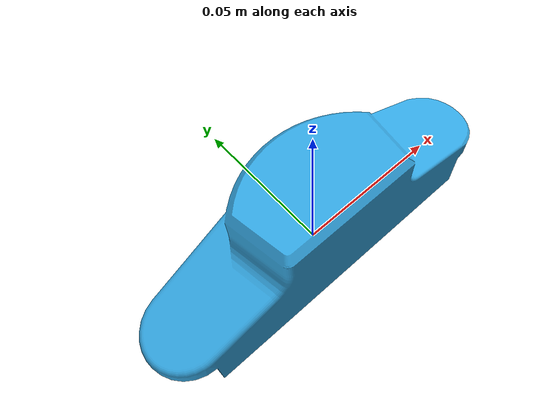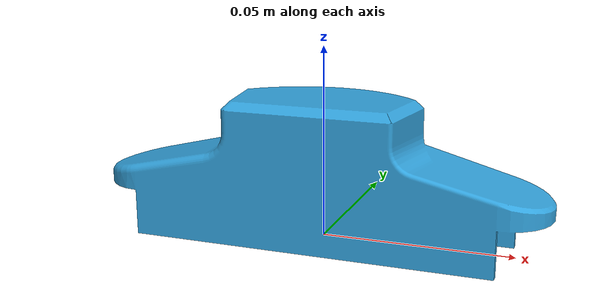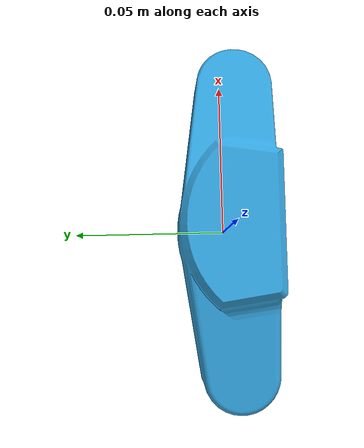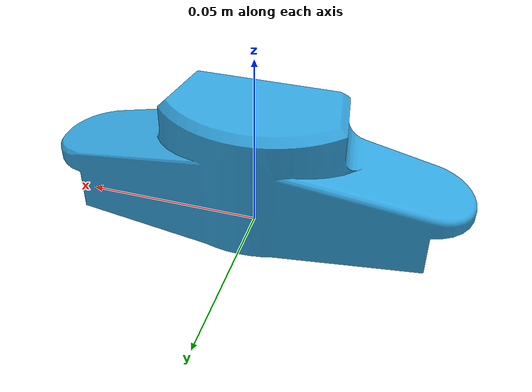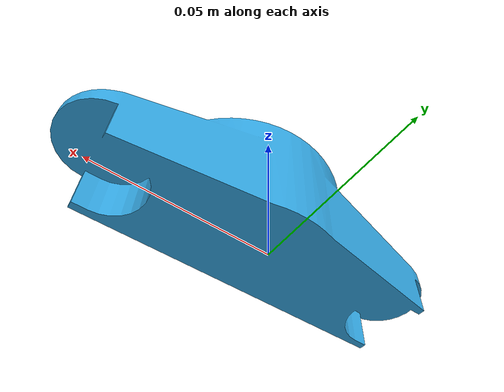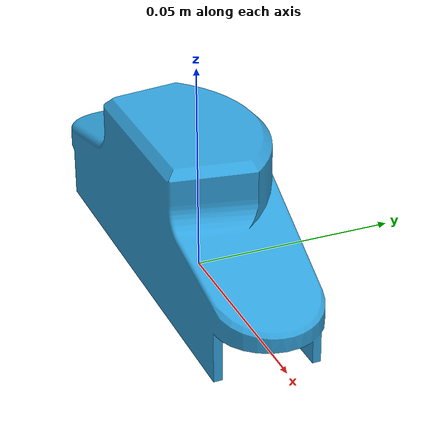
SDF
<?xml version='1.0'?>
<sdf version='1.6'>
  <model name='Valve_Tappet'>
    <link name='link_12'>
      <pose frame=''>0 0 0 0 -0 0</pose>
<inertial>
    <pose>0 0 0 0 0 0</pose>
    <mass>0.25</mass>
    <inertia>
      <ixx>1.2135371876748723e-05</ixx>
      <ixy>0</ixy>
      <ixz>-0</ixz>
      <iyy>7.96024081407589e-05</iyy>
      <iyz>0</iyz>
      <izz>7.747736298327898e-05</izz>
    </inertia>
  </inertial>
          <visual name='visual'>
        <geometry>
          <mesh>
            <uri>model://Valve_Tappet/Valve_Tappet.stl</uri>
            <scale>2 2 2</scale>
          </mesh>
        </geometry>
        <material>
          <ambient>0.2 0.65 0.88 1</ambient>
          <diffuse>0.2 0.65 0.88 1</diffuse>
          <specular>0.01 0.01 0.01 1</specular>
          <emissive>0 0 0 1</emissive>
          <shader type='vertex'>
            <normal_map>__default__</normal_map>
          </shader>
        </material>
        <cast_shadows>1</cast_shadows>
        <transparency>0</transparency>
      </visual>
      <collision name='collision'>
        <laser_retro>0</laser_retro>
        <max_contacts>10</max_contacts>
        <pose frame=''>0 0 0 0 -0 0</pose>
        <geometry>
          <mesh>
            <uri>model://Valve_Tappet/Valve_Tappet.stl</uri>
            <scale>2 2 2</scale>
          </mesh>
        </geometry>

<surface>
          <friction>
            <ode>
              <mu>10000.0</mu>
              <mu2>10000.0</mu2>
            </ode>
          </friction>
          <contact>
            <ode>
              <kp>10000.0</kp>
              <kd>100.0</kd>
              <min_depth>0.0001</min_depth>
              <max_vel>0</max_vel>
            </ode>
          </contact>
        </surface>
       </collision>
    </link>

    <static>0</static>
    <allow_auto_disable>1</allow_auto_disable>
  </model>
</sdf>
